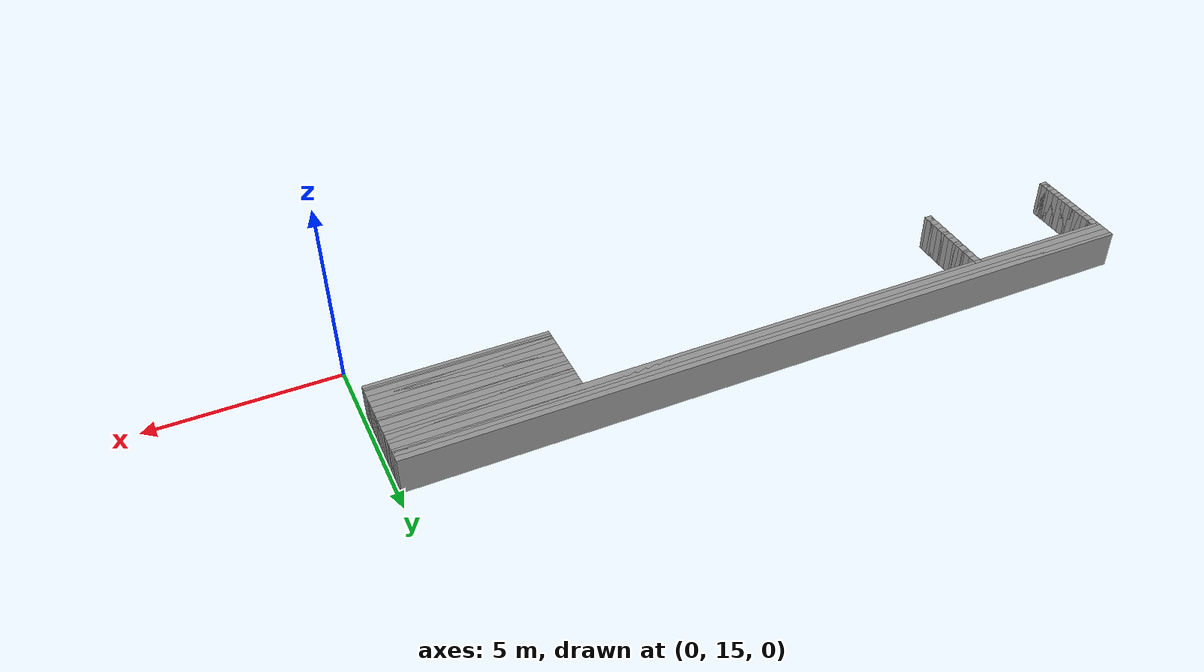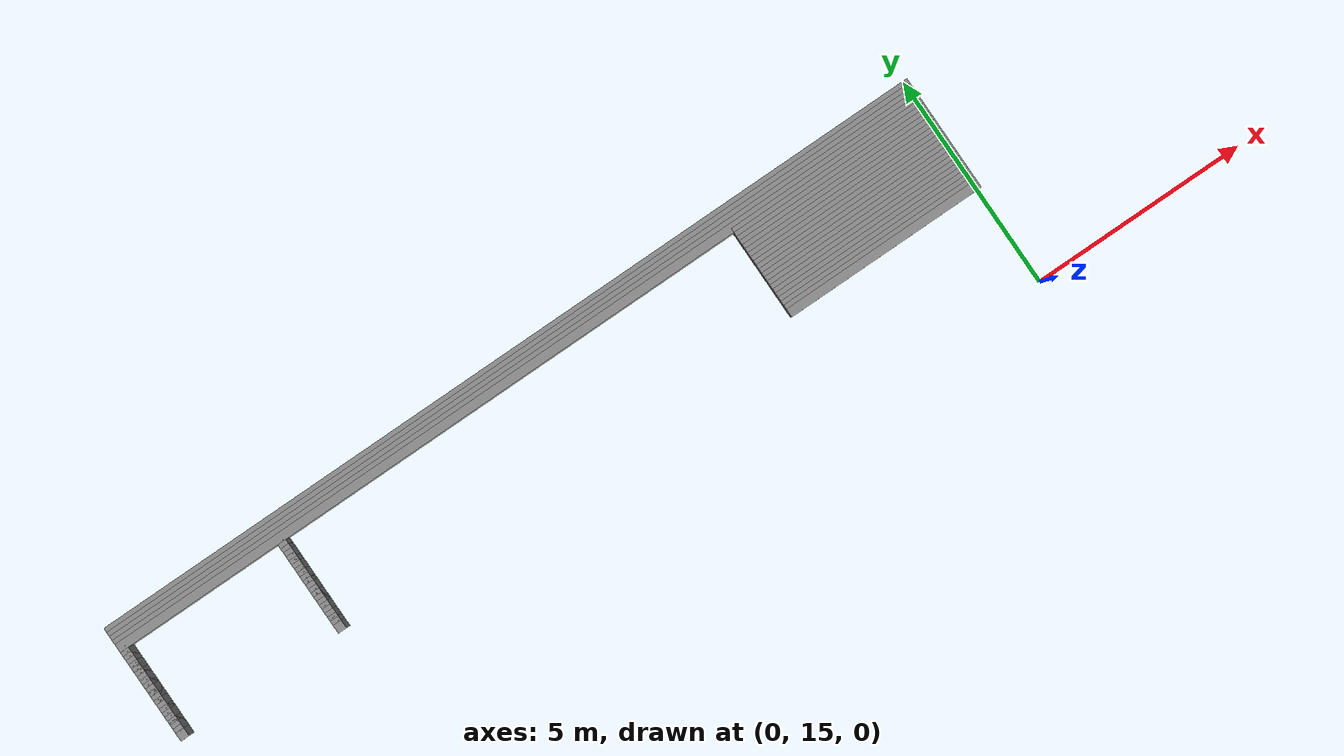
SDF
<sdf version="1.6">
 <world name="GridMap">
  <model name="GridMap">
   <link name="Wall_(159.0,173.0)">
    <collision name="Wall_(159.0,173.0)_Collision">
     <geometry><box><size>0.2 0.2 1.0</size></box></geometry>
     <pose>-15.9 17.3 0.5 0 -0 0</pose>
    </collision>
    <visual name="Wall_(159.0,173.0)_Visual">
     <geometry><box><size>0.2 0.2 1.0</size></box></geometry>
     <pose>-15.9 17.3 0.5 0 -0 0</pose>
     <material>
      <script><uri>file://media/materials/scripts/gazebo.material</uri><name>Gazebo/Grey</name></script>
      <ambient>1 1 1 1</ambient>
     </material>
     <meta><layer>0</layer></meta>
    </visual>
    <pose>0 0 0.5 0 -0 0</pose>
   </link>
   <link name="Wall_(198.0,173.0)">
    <collision name="Wall_(198.0,173.0)_Collision">
     <geometry><box><size>0.2 0.2 1.0</size></box></geometry>
     <pose>-19.8 17.3 0.5 0 -0 0</pose>
    </collision>
    <visual name="Wall_(198.0,173.0)_Visual">
     <geometry><box><size>0.2 0.2 1.0</size></box></geometry>
     <pose>-19.8 17.3 0.5 0 -0 0</pose>
     <material>
      <script><uri>file://media/materials/scripts/gazebo.material</uri><name>Gazebo/Grey</name></script>
      <ambient>1 1 1 1</ambient>
     </material>
     <meta><layer>0</layer></meta>
    </visual>
    <pose>0 0 0.5 0 -0 0</pose>
   </link>
   <link name="Wall_(23.5,174.0)">
    <collision name="Wall_(23.5,174.0)_Collision">
     <geometry><box><size>4.7 0.2 1.0</size></box></geometry>
     <pose>-2.35 17.4 0.5 0 -0 0</pose>
    </collision>
    <visual name="Wall_(23.5,174.0)_Visual">
     <geometry><box><size>4.7 0.2 1.0</size></box></geometry>
     <pose>-2.35 17.4 0.5 0 -0 0</pose>
     <material>
      <script><uri>file://media/materials/scripts/gazebo.material</uri><name>Gazebo/Grey</name></script>
      <ambient>1 1 1 1</ambient>
     </material>
     <meta><layer>0</layer></meta>
    </visual>
    <pose>0 0 0.5 0 -0 0</pose>
   </link>
   <link name="Wall_(159.0,174.0)">
    <collision name="Wall_(159.0,174.0)_Collision">
     <geometry><box><size>0.2 0.2 1.0</size></box></geometry>
     <pose>-15.9 17.4 0.5 0 -0 0</pose>
    </collision>
    <visual name="Wall_(159.0,174.0)_Visual">
     <geometry><box><size>0.2 0.2 1.0</size></box></geometry>
     <pose>-15.9 17.4 0.5 0 -0 0</pose>
     <material>
      <script><uri>file://media/materials/scripts/gazebo.material</uri><name>Gazebo/Grey</name></script>
      <ambient>1 1 1 1</ambient>
     </material>
     <meta><layer>0</layer></meta>
    </visual>
    <pose>0 0 0.5 0 -0 0</pose>
   </link>
   <link name="Wall_(198.0,174.0)">
    <collision name="Wall_(198.0,174.0)_Collision">
     <geometry><box><size>0.2 0.2 1.0</size></box></geometry>
     <pose>-19.8 17.4 0.5 0 -0 0</pose>
    </collision>
    <visual name="Wall_(198.0,174.0)_Visual">
     <geometry><box><size>0.2 0.2 1.0</size></box></geometry>
     <pose>-19.8 17.4 0.5 0 -0 0</pose>
     <material>
      <script><uri>file://media/materials/scripts/gazebo.material</uri><name>Gazebo/Grey</name></script>
      <ambient>1 1 1 1</ambient>
     </material>
     <meta><layer>0</layer></meta>
    </visual>
    <pose>0 0 0.5 0 -0 0</pose>
   </link>
   <link name="Wall_(23.5,175.0)">
    <collision name="Wall_(23.5,175.0)_Collision">
     <geometry><box><size>4.7 0.2 1.0</size></box></geometry>
     <pose>-2.35 17.5 0.5 0 -0 0</pose>
    </collision>
    <visual name="Wall_(23.5,175.0)_Visual">
     <geometry><box><size>4.7 0.2 1.0</size></box></geometry>
     <pose>-2.35 17.5 0.5 0 -0 0</pose>
     <material>
      <script><uri>file://media/materials/scripts/gazebo.material</uri><name>Gazebo/Grey</name></script>
      <ambient>1 1 1 1</ambient>
     </material>
     <meta><layer>0</layer></meta>
    </visual>
    <pose>0 0 0.5 0 -0 0</pose>
   </link>
   <link name="Wall_(159.0,175.0)">
    <collision name="Wall_(159.0,175.0)_Collision">
     <geometry><box><size>0.2 0.2 1.0</size></box></geometry>
     <pose>-15.9 17.5 0.5 0 -0 0</pose>
    </collision>
    <visual name="Wall_(159.0,175.0)_Visual">
     <geometry><box><size>0.2 0.2 1.0</size></box></geometry>
     <pose>-15.9 17.5 0.5 0 -0 0</pose>
     <material>
      <script><uri>file://media/materials/scripts/gazebo.material</uri><name>Gazebo/Grey</name></script>
      <ambient>1 1 1 1</ambient>
     </material>
     <meta><layer>0</layer></meta>
    </visual>
    <pose>0 0 0.5 0 -0 0</pose>
   </link>
   <link name="Wall_(198.0,175.0)">
    <collision name="Wall_(198.0,175.0)_Collision">
     <geometry><box><size>0.2 0.2 1.0</size></box></geometry>
     <pose>-19.8 17.5 0.5 0 -0 0</pose>
    </collision>
    <visual name="Wall_(198.0,175.0)_Visual">
     <geometry><box><size>0.2 0.2 1.0</size></box></geometry>
     <pose>-19.8 17.5 0.5 0 -0 0</pose>
     <material>
      <script><uri>file://media/materials/scripts/gazebo.material</uri><name>Gazebo/Grey</name></script>
      <ambient>1 1 1 1</ambient>
     </material>
     <meta><layer>0</layer></meta>
    </visual>
    <pose>0 0 0.5 0 -0 0</pose>
   </link>
   <link name="Wall_(23.5,176.0)">
    <collision name="Wall_(23.5,176.0)_Collision">
     <geometry><box><size>4.7 0.2 1.0</size></box></geometry>
     <pose>-2.35 17.6 0.5 0 -0 0</pose>
    </collision>
    <visual name="Wall_(23.5,176.0)_Visual">
     <geometry><box><size>4.7 0.2 1.0</size></box></geometry>
     <pose>-2.35 17.6 0.5 0 -0 0</pose>
     <material>
      <script><uri>file://media/materials/scripts/gazebo.material</uri><name>Gazebo/Grey</name></script>
      <ambient>1 1 1 1</ambient>
     </material>
     <meta><layer>0</layer></meta>
    </visual>
    <pose>0 0 0.5 0 -0 0</pose>
   </link>
   <link name="Wall_(159.0,176.0)">
    <collision name="Wall_(159.0,176.0)_Collision">
     <geometry><box><size>0.2 0.2 1.0</size></box></geometry>
     <pose>-15.9 17.6 0.5 0 -0 0</pose>
    </collision>
    <visual name="Wall_(159.0,176.0)_Visual">
     <geometry><box><size>0.2 0.2 1.0</size></box></geometry>
     <pose>-15.9 17.6 0.5 0 -0 0</pose>
     <material>
      <script><uri>file://media/materials/scripts/gazebo.material</uri><name>Gazebo/Grey</name></script>
      <ambient>1 1 1 1</ambient>
     </material>
     <meta><layer>0</layer></meta>
    </visual>
    <pose>0 0 0.5 0 -0 0</pose>
   </link>
   <link name="Wall_(198.0,176.0)">
    <collision name="Wall_(198.0,176.0)_Collision">
     <geometry><box><size>0.2 0.2 1.0</size></box></geometry>
     <pose>-19.8 17.6 0.5 0 -0 0</pose>
    </collision>
    <visual name="Wall_(198.0,176.0)_Visual">
     <geometry><box><size>0.2 0.2 1.0</size></box></geometry>
     <pose>-19.8 17.6 0.5 0 -0 0</pose>
     <material>
      <script><uri>file://media/materials/scripts/gazebo.material</uri><name>Gazebo/Grey</name></script>
      <ambient>1 1 1 1</ambient>
     </material>
     <meta><layer>0</layer></meta>
    </visual>
    <pose>0 0 0.5 0 -0 0</pose>
   </link>
   <link name="Wall_(23.5,177.0)">
    <collision name="Wall_(23.5,177.0)_Collision">
     <geometry><box><size>4.7 0.2 1.0</size></box></geometry>
     <pose>-2.35 17.7 0.5 0 -0 0</pose>
    </collision>
    <visual name="Wall_(23.5,177.0)_Visual">
     <geometry><box><size>4.7 0.2 1.0</size></box></geometry>
     <pose>-2.35 17.7 0.5 0 -0 0</pose>
     <material>
      <script><uri>file://media/materials/scripts/gazebo.material</uri><name>Gazebo/Grey</name></script>
      <ambient>1 1 1 1</ambient>
     </material>
     <meta><layer>0</layer></meta>
    </visual>
    <pose>0 0 0.5 0 -0 0</pose>
   </link>
   <link name="Wall_(159.0,177.0)">
    <collision name="Wall_(159.0,177.0)_Collision">
     <geometry><box><size>0.2 0.2 1.0</size></box></geometry>
     <pose>-15.9 17.7 0.5 0 -0 0</pose>
    </collision>
    <visual name="Wall_(159.0,177.0)_Visual">
     <geometry><box><size>0.2 0.2 1.0</size></box></geometry>
     <pose>-15.9 17.7 0.5 0 -0 0</pose>
     <material>
      <script><uri>file://media/materials/scripts/gazebo.material</uri><name>Gazebo/Grey</name></script>
      <ambient>1 1 1 1</ambient>
     </material>
     <meta><layer>0</layer></meta>
    </visual>
    <pose>0 0 0.5 0 -0 0</pose>
   </link>
   <link name="Wall_(198.0,177.0)">
    <collision name="Wall_(198.0,177.0)_Collision">
     <geometry><box><size>0.2 0.2 1.0</size></box></geometry>
     <pose>-19.8 17.7 0.5 0 -0 0</pose>
    </collision>
    <visual name="Wall_(198.0,177.0)_Visual">
     <geometry><box><size>0.2 0.2 1.0</size></box></geometry>
     <pose>-19.8 17.7 0.5 0 -0 0</pose>
     <material>
      <script><uri>file://media/materials/scripts/gazebo.material</uri><name>Gazebo/Grey</name></script>
      <ambient>1 1 1 1</ambient>
     </material>
     <meta><layer>0</layer></meta>
    </visual>
    <pose>0 0 0.5 0 -0 0</pose>
   </link>
   <link name="Wall_(23.5,178.0)">
    <collision name="Wall_(23.5,178.0)_Collision">
     <geometry><box><size>4.7 0.2 1.0</size></box></geometry>
     <pose>-2.35 17.8 0.5 0 -0 0</pose>
    </collision>
    <visual name="Wall_(23.5,178.0)_Visual">
     <geometry><box><size>4.7 0.2 1.0</size></box></geometry>
     <pose>-2.35 17.8 0.5 0 -0 0</pose>
     <material>
      <script><uri>file://media/materials/scripts/gazebo.material</uri><name>Gazebo/Grey</name></script>
      <ambient>1 1 1 1</ambient>
     </material>
     <meta><layer>0</layer></meta>
    </visual>
    <pose>0 0 0.5 0 -0 0</pose>
   </link>
   <link name="Wall_(159.0,178.0)">
    <collision name="Wall_(159.0,178.0)_Collision">
     <geometry><box><size>0.2 0.2 1.0</size></box></geometry>
     <pose>-15.9 17.8 0.5 0 -0 0</pose>
    </collision>
    <visual name="Wall_(159.0,178.0)_Visual">
     <geometry><box><size>0.2 0.2 1.0</size></box></geometry>
     <pose>-15.9 17.8 0.5 0 -0 0</pose>
     <material>
      <script><uri>file://media/materials/scripts/gazebo.material</uri><name>Gazebo/Grey</name></script>
      <ambient>1 1 1 1</ambient>
     </material>
     <meta><layer>0</layer></meta>
    </visual>
    <pose>0 0 0.5 0 -0 0</pose>
   </link>
   <link name="Wall_(198.0,178.0)">
    <collision name="Wall_(198.0,178.0)_Collision">
     <geometry><box><size>0.2 0.2 1.0</size></box></geometry>
     <pose>-19.8 17.8 0.5 0 -0 0</pose>
    </collision>
    <visual name="Wall_(198.0,178.0)_Visual">
     <geometry><box><size>0.2 0.2 1.0</size></box></geometry>
     <pose>-19.8 17.8 0.5 0 -0 0</pose>
     <material>
      <script><uri>file://media/materials/scripts/gazebo.material</uri><name>Gazebo/Grey</name></script>
      <ambient>1 1 1 1</ambient>
     </material>
     <meta><layer>0</layer></meta>
    </visual>
    <pose>0 0 0.5 0 -0 0</pose>
   </link>
   <link name="Wall_(23.5,179.0)">
    <collision name="Wall_(23.5,179.0)_Collision">
     <geometry><box><size>4.7 0.2 1.0</size></box></geometry>
     <pose>-2.35 17.9 0.5 0 -0 0</pose>
    </collision>
    <visual name="Wall_(23.5,179.0)_Visual">
     <geometry><box><size>4.7 0.2 1.0</size></box></geometry>
     <pose>-2.35 17.9 0.5 0 -0 0</pose>
     <material>
      <script><uri>file://media/materials/scripts/gazebo.material</uri><name>Gazebo/Grey</name></script>
      <ambient>1 1 1 1</ambient>
     </material>
     <meta><layer>0</layer></meta>
    </visual>
    <pose>0 0 0.5 0 -0 0</pose>
   </link>
   <link name="Wall_(159.0,179.0)">
    <collision name="Wall_(159.0,179.0)_Collision">
     <geometry><box><size>0.2 0.2 1.0</size></box></geometry>
     <pose>-15.9 17.9 0.5 0 -0 0</pose>
    </collision>
    <visual name="Wall_(159.0,179.0)_Visual">
     <geometry><box><size>0.2 0.2 1.0</size></box></geometry>
     <pose>-15.9 17.9 0.5 0 -0 0</pose>
     <material>
      <script><uri>file://media/materials/scripts/gazebo.material</uri><name>Gazebo/Grey</name></script>
      <ambient>1 1 1 1</ambient>
     </material>
     <meta><layer>0</layer></meta>
    </visual>
    <pose>0 0 0.5 0 -0 0</pose>
   </link>
   <link name="Wall_(198.0,179.0)">
    <collision name="Wall_(198.0,179.0)_Collision">
     <geometry><box><size>0.2 0.2 1.0</size></box></geometry>
     <pose>-19.8 17.9 0.5 0 -0 0</pose>
    </collision>
    <visual name="Wall_(198.0,179.0)_Visual">
     <geometry><box><size>0.2 0.2 1.0</size></box></geometry>
     <pose>-19.8 17.9 0.5 0 -0 0</pose>
     <material>
      <script><uri>file://media/materials/scripts/gazebo.material</uri><name>Gazebo/Grey</name></script>
      <ambient>1 1 1 1</ambient>
     </material>
     <meta><layer>0</layer></meta>
    </visual>
    <pose>0 0 0.5 0 -0 0</pose>
   </link>
   <link name="Wall_(23.5,180.0)">
    <collision name="Wall_(23.5,180.0)_Collision">
     <geometry><box><size>4.7 0.2 1.0</size></box></geometry>
     <pose>-2.35 18.0 0.5 0 -0 0</pose>
    </collision>
    <visual name="Wall_(23.5,180.0)_Visual">
     <geometry><box><size>4.7 0.2 1.0</size></box></geometry>
     <pose>-2.35 18.0 0.5 0 -0 0</pose>
     <material>
      <script><uri>file://media/materials/scripts/gazebo.material</uri><name>Gazebo/Grey</name></script>
      <ambient>1 1 1 1</ambient>
     </material>
     <meta><layer>0</layer></meta>
    </visual>
    <pose>0 0 0.5 0 -0 0</pose>
   </link>
   <link name="Wall_(159.0,180.0)">
    <collision name="Wall_(159.0,180.0)_Collision">
     <geometry><box><size>0.2 0.2 1.0</size></box></geometry>
     <pose>-15.9 18.0 0.5 0 -0 0</pose>
    </collision>
    <visual name="Wall_(159.0,180.0)_Visual">
     <geometry><box><size>0.2 0.2 1.0</size></box></geometry>
     <pose>-15.9 18.0 0.5 0 -0 0</pose>
     <material>
      <script><uri>file://media/materials/scripts/gazebo.material</uri><name>Gazebo/Grey</name></script>
      <ambient>1 1 1 1</ambient>
     </material>
     <meta><layer>0</layer></meta>
    </visual>
    <pose>0 0 0.5 0 -0 0</pose>
   </link>
   <link name="Wall_(198.0,180.0)">
    <collision name="Wall_(198.0,180.0)_Collision">
     <geometry><box><size>0.2 0.2 1.0</size></box></geometry>
     <pose>-19.8 18.0 0.5 0 -0 0</pose>
    </collision>
    <visual name="Wall_(198.0,180.0)_Visual">
     <geometry><box><size>0.2 0.2 1.0</size></box></geometry>
     <pose>-19.8 18.0 0.5 0 -0 0</pose>
     <material>
      <script><uri>file://media/materials/scripts/gazebo.material</uri><name>Gazebo/Grey</name></script>
      <ambient>1 1 1 1</ambient>
     </material>
     <meta><layer>0</layer></meta>
    </visual>
    <pose>0 0 0.5 0 -0 0</pose>
   </link>
   <link name="Wall_(23.5,181.0)">
    <collision name="Wall_(23.5,181.0)_Collision">
     <geometry><box><size>4.7 0.2 1.0</size></box></geometry>
     <pose>-2.35 18.1 0.5 0 -0 0</pose>
    </collision>
    <visual name="Wall_(23.5,181.0)_Visual">
     <geometry><box><size>4.7 0.2 1.0</size></box></geometry>
     <pose>-2.35 18.1 0.5 0 -0 0</pose>
     <material>
      <script><uri>file://media/materials/scripts/gazebo.material</uri><name>Gazebo/Grey</name></script>
      <ambient>1 1 1 1</ambient>
     </material>
     <meta><layer>0</layer></meta>
    </visual>
    <pose>0 0 0.5 0 -0 0</pose>
   </link>
   <link name="Wall_(159.0,181.0)">
    <collision name="Wall_(159.0,181.0)_Collision">
     <geometry><box><size>0.2 0.2 1.0</size></box></geometry>
     <pose>-15.9 18.1 0.5 0 -0 0</pose>
    </collision>
    <visual name="Wall_(159.0,181.0)_Visual">
     <geometry><box><size>0.2 0.2 1.0</size></box></geometry>
     <pose>-15.9 18.1 0.5 0 -0 0</pose>
     <material>
      <script><uri>file://media/materials/scripts/gazebo.material</uri><name>Gazebo/Grey</name></script>
      <ambient>1 1 1 1</ambient>
     </material>
     <meta><layer>0</layer></meta>
    </visual>
    <pose>0 0 0.5 0 -0 0</pose>
   </link>
   <link name="Wall_(198.0,181.0)">
    <collision name="Wall_(198.0,181.0)_Collision">
     <geometry><box><size>0.2 0.2 1.0</size></box></geometry>
     <pose>-19.8 18.1 0.5 0 -0 0</pose>
    </collision>
    <visual name="Wall_(198.0,181.0)_Visual">
     <geometry><box><size>0.2 0.2 1.0</size></box></geometry>
     <pose>-19.8 18.1 0.5 0 -0 0</pose>
     <material>
      <script><uri>file://media/materials/scripts/gazebo.material</uri><name>Gazebo/Grey</name></script>
      <ambient>1 1 1 1</ambient>
     </material>
     <meta><layer>0</layer></meta>
    </visual>
    <pose>0 0 0.5 0 -0 0</pose>
   </link>
   <link name="Wall_(23.5,182.0)">
    <collision name="Wall_(23.5,182.0)_Collision">
     <geometry><box><size>4.7 0.2 1.0</size></box></geometry>
     <pose>-2.35 18.2 0.5 0 -0 0</pose>
    </collision>
    <visual name="Wall_(23.5,182.0)_Visual">
     <geometry><box><size>4.7 0.2 1.0</size></box></geometry>
     <pose>-2.35 18.2 0.5 0 -0 0</pose>
     <material>
      <script><uri>file://media/materials/scripts/gazebo.material</uri><name>Gazebo/Grey</name></script>
      <ambient>1 1 1 1</ambient>
     </material>
     <meta><layer>0</layer></meta>
    </visual>
    <pose>0 0 0.5 0 -0 0</pose>
   </link>
   <link name="Wall_(159.0,182.0)">
    <collision name="Wall_(159.0,182.0)_Collision">
     <geometry><box><size>0.2 0.2 1.0</size></box></geometry>
     <pose>-15.9 18.2 0.5 0 -0 0</pose>
    </collision>
    <visual name="Wall_(159.0,182.0)_Visual">
     <geometry><box><size>0.2 0.2 1.0</size></box></geometry>
     <pose>-15.9 18.2 0.5 0 -0 0</pose>
     <material>
      <script><uri>file://media/materials/scripts/gazebo.material</uri><name>Gazebo/Grey</name></script>
      <ambient>1 1 1 1</ambient>
     </material>
     <meta><layer>0</layer></meta>
    </visual>
    <pose>0 0 0.5 0 -0 0</pose>
   </link>
   <link name="Wall_(198.0,182.0)">
    <collision name="Wall_(198.0,182.0)_Collision">
     <geometry><box><size>0.2 0.2 1.0</size></box></geometry>
     <pose>-19.8 18.2 0.5 0 -0 0</pose>
    </collision>
    <visual name="Wall_(198.0,182.0)_Visual">
     <geometry><box><size>0.2 0.2 1.0</size></box></geometry>
     <pose>-19.8 18.2 0.5 0 -0 0</pose>
     <material>
      <script><uri>file://media/materials/scripts/gazebo.material</uri><name>Gazebo/Grey</name></script>
      <ambient>1 1 1 1</ambient>
     </material>
     <meta><layer>0</layer></meta>
    </visual>
    <pose>0 0 0.5 0 -0 0</pose>
   </link>
   <link name="Wall_(23.5,183.0)">
    <collision name="Wall_(23.5,183.0)_Collision">
     <geometry><box><size>4.7 0.2 1.0</size></box></geometry>
     <pose>-2.35 18.3 0.5 0 -0 0</pose>
    </collision>
    <visual name="Wall_(23.5,183.0)_Visual">
     <geometry><box><size>4.7 0.2 1.0</size></box></geometry>
     <pose>-2.35 18.3 0.5 0 -0 0</pose>
     <material>
      <script><uri>file://media/materials/scripts/gazebo.material</uri><name>Gazebo/Grey</name></script>
      <ambient>1 1 1 1</ambient>
     </material>
     <meta><layer>0</layer></meta>
    </visual>
    <pose>0 0 0.5 0 -0 0</pose>
   </link>
   <link name="Wall_(159.0,183.0)">
    <collision name="Wall_(159.0,183.0)_Collision">
     <geometry><box><size>0.2 0.2 1.0</size></box></geometry>
     <pose>-15.9 18.3 0.5 0 -0 0</pose>
    </collision>
    <visual name="Wall_(159.0,183.0)_Visual">
     <geometry><box><size>0.2 0.2 1.0</size></box></geometry>
     <pose>-15.9 18.3 0.5 0 -0 0</pose>
     <material>
      <script><uri>file://media/materials/scripts/gazebo.material</uri><name>Gazebo/Grey</name></script>
      <ambient>1 1 1 1</ambient>
     </material>
     <meta><layer>0</layer></meta>
    </visual>
    <pose>0 0 0.5 0 -0 0</pose>
   </link>
   <link name="Wall_(198.0,183.0)">
    <collision name="Wall_(198.0,183.0)_Collision">
     <geometry><box><size>0.2 0.2 1.0</size></box></geometry>
     <pose>-19.8 18.3 0.5 0 -0 0</pose>
    </collision>
    <visual name="Wall_(198.0,183.0)_Visual">
     <geometry><box><size>0.2 0.2 1.0</size></box></geometry>
     <pose>-19.8 18.3 0.5 0 -0 0</pose>
     <material>
      <script><uri>file://media/materials/scripts/gazebo.material</uri><name>Gazebo/Grey</name></script>
      <ambient>1 1 1 1</ambient>
     </material>
     <meta><layer>0</layer></meta>
    </visual>
    <pose>0 0 0.5 0 -0 0</pose>
   </link>
   <link name="Wall_(23.5,184.0)">
    <collision name="Wall_(23.5,184.0)_Collision">
     <geometry><box><size>4.7 0.2 1.0</size></box></geometry>
     <pose>-2.35 18.4 0.5 0 -0 0</pose>
    </collision>
    <visual name="Wall_(23.5,184.0)_Visual">
     <geometry><box><size>4.7 0.2 1.0</size></box></geometry>
     <pose>-2.35 18.4 0.5 0 -0 0</pose>
     <material>
      <script><uri>file://media/materials/scripts/gazebo.material</uri><name>Gazebo/Grey</name></script>
      <ambient>1 1 1 1</ambient>
     </material>
     <meta><layer>0</layer></meta>
    </visual>
    <pose>0 0 0.5 0 -0 0</pose>
   </link>
   <link name="Wall_(159.0,184.0)">
    <collision name="Wall_(159.0,184.0)_Collision">
     <geometry><box><size>0.2 0.2 1.0</size></box></geometry>
     <pose>-15.9 18.4 0.5 0 -0 0</pose>
    </collision>
    <visual name="Wall_(159.0,184.0)_Visual">
     <geometry><box><size>0.2 0.2 1.0</size></box></geometry>
     <pose>-15.9 18.4 0.5 0 -0 0</pose>
     <material>
      <script><uri>file://media/materials/scripts/gazebo.material</uri><name>Gazebo/Grey</name></script>
      <ambient>1 1 1 1</ambient>
     </material>
     <meta><layer>0</layer></meta>
    </visual>
    <pose>0 0 0.5 0 -0 0</pose>
   </link>
   <link name="Wall_(198.0,184.0)">
    <collision name="Wall_(198.0,184.0)_Collision">
     <geometry><box><size>0.2 0.2 1.0</size></box></geometry>
     <pose>-19.8 18.4 0.5 0 -0 0</pose>
    </collision>
    <visual name="Wall_(198.0,184.0)_Visual">
     <geometry><box><size>0.2 0.2 1.0</size></box></geometry>
     <pose>-19.8 18.4 0.5 0 -0 0</pose>
     <material>
      <script><uri>file://media/materials/scripts/gazebo.material</uri><name>Gazebo/Grey</name></script>
      <ambient>1 1 1 1</ambient>
     </material>
     <meta><layer>0</layer></meta>
    </visual>
    <pose>0 0 0.5 0 -0 0</pose>
   </link>
   <link name="Wall_(23.5,185.0)">
    <collision name="Wall_(23.5,185.0)_Collision">
     <geometry><box><size>4.7 0.2 1.0</size></box></geometry>
     <pose>-2.35 18.5 0.5 0 -0 0</pose>
    </collision>
    <visual name="Wall_(23.5,185.0)_Visual">
     <geometry><box><size>4.7 0.2 1.0</size></box></geometry>
     <pose>-2.35 18.5 0.5 0 -0 0</pose>
     <material>
      <script><uri>file://media/materials/scripts/gazebo.material</uri><name>Gazebo/Grey</name></script>
      <ambient>1 1 1 1</ambient>
     </material>
     <meta><layer>0</layer></meta>
    </visual>
    <pose>0 0 0.5 0 -0 0</pose>
   </link>
   <link name="Wall_(159.0,185.0)">
    <collision name="Wall_(159.0,185.0)_Collision">
     <geometry><box><size>0.2 0.2 1.0</size></box></geometry>
     <pose>-15.9 18.5 0.5 0 -0 0</pose>
    </collision>
    <visual name="Wall_(159.0,185.0)_Visual">
     <geometry><box><size>0.2 0.2 1.0</size></box></geometry>
     <pose>-15.9 18.5 0.5 0 -0 0</pose>
     <material>
      <script><uri>file://media/materials/scripts/gazebo.material</uri><name>Gazebo/Grey</name></script>
      <ambient>1 1 1 1</ambient>
     </material>
     <meta><layer>0</layer></meta>
    </visual>
    <pose>0 0 0.5 0 -0 0</pose>
   </link>
   <link name="Wall_(198.0,185.0)">
    <collision name="Wall_(198.0,185.0)_Collision">
     <geometry><box><size>0.2 0.2 1.0</size></box></geometry>
     <pose>-19.8 18.5 0.5 0 -0 0</pose>
    </collision>
    <visual name="Wall_(198.0,185.0)_Visual">
     <geometry><box><size>0.2 0.2 1.0</size></box></geometry>
     <pose>-19.8 18.5 0.5 0 -0 0</pose>
     <material>
      <script><uri>file://media/materials/scripts/gazebo.material</uri><name>Gazebo/Grey</name></script>
      <ambient>1 1 1 1</ambient>
     </material>
     <meta><layer>0</layer></meta>
    </visual>
    <pose>0 0 0.5 0 -0 0</pose>
   </link>
   <link name="Wall_(23.5,186.0)">
    <collision name="Wall_(23.5,186.0)_Collision">
     <geometry><box><size>4.7 0.2 1.0</size></box></geometry>
     <pose>-2.35 18.6 0.5 0 -0 0</pose>
    </collision>
    <visual name="Wall_(23.5,186.0)_Visual">
     <geometry><box><size>4.7 0.2 1.0</size></box></geometry>
     <pose>-2.35 18.6 0.5 0 -0 0</pose>
     <material>
      <script><uri>file://media/materials/scripts/gazebo.material</uri><name>Gazebo/Grey</name></script>
      <ambient>1 1 1 1</ambient>
     </material>
     <meta><layer>0</layer></meta>
    </visual>
    <pose>0 0 0.5 0 -0 0</pose>
   </link>
   <link name="Wall_(159.0,186.0)">
    <collision name="Wall_(159.0,186.0)_Collision">
     <geometry><box><size>0.2 0.2 1.0</size></box></geometry>
     <pose>-15.9 18.6 0.5 0 -0 0</pose>
    </collision>
    <visual name="Wall_(159.0,186.0)_Visual">
     <geometry><box><size>0.2 0.2 1.0</size></box></geometry>
     <pose>-15.9 18.6 0.5 0 -0 0</pose>
     <material>
      <script><uri>file://media/materials/scripts/gazebo.material</uri><name>Gazebo/Grey</name></script>
      <ambient>1 1 1 1</ambient>
     </material>
     <meta><layer>0</layer></meta>
    </visual>
    <pose>0 0 0.5 0 -0 0</pose>
   </link>
   <link name="Wall_(198.0,186.0)">
    <collision name="Wall_(198.0,186.0)_Collision">
     <geometry><box><size>0.2 0.2 1.0</size></box></geometry>
     <pose>-19.8 18.6 0.5 0 -0 0</pose>
    </collision>
    <visual name="Wall_(198.0,186.0)_Visual">
     <geometry><box><size>0.2 0.2 1.0</size></box></geometry>
     <pose>-19.8 18.6 0.5 0 -0 0</pose>
     <material>
      <script><uri>file://media/materials/scripts/gazebo.material</uri><name>Gazebo/Grey</name></script>
      <ambient>1 1 1 1</ambient>
     </material>
     <meta><layer>0</layer></meta>
    </visual>
    <pose>0 0 0.5 0 -0 0</pose>
   </link>
   <link name="Wall_(23.5,187.0)">
    <collision name="Wall_(23.5,187.0)_Collision">
     <geometry><box><size>4.7 0.2 1.0</size></box></geometry>
     <pose>-2.35 18.7 0.5 0 -0 0</pose>
    </collision>
    <visual name="Wall_(23.5,187.0)_Visual">
     <geometry><box><size>4.7 0.2 1.0</size></box></geometry>
     <pose>-2.35 18.7 0.5 0 -0 0</pose>
     <material>
      <script><uri>file://media/materials/scripts/gazebo.material</uri><name>Gazebo/Grey</name></script>
      <ambient>1 1 1 1</ambient>
     </material>
     <meta><layer>0</layer></meta>
    </visual>
    <pose>0 0 0.5 0 -0 0</pose>
   </link>
   <link name="Wall_(159.0,187.0)">
    <collision name="Wall_(159.0,187.0)_Collision">
     <geometry><box><size>0.2 0.2 1.0</size></box></geometry>
     <pose>-15.9 18.7 0.5 0 -0 0</pose>
    </collision>
    <visual name="Wall_(159.0,187.0)_Visual">
     <geometry><box><size>0.2 0.2 1.0</size></box></geometry>
     <pose>-15.9 18.7 0.5 0 -0 0</pose>
     <material>
      <script><uri>file://media/materials/scripts/gazebo.material</uri><name>Gazebo/Grey</name></script>
      <ambient>1 1 1 1</ambient>
     </material>
     <meta><layer>0</layer></meta>
    </visual>
    <pose>0 0 0.5 0 -0 0</pose>
   </link>
   <link name="Wall_(198.0,187.0)">
    <collision name="Wall_(198.0,187.0)_Collision">
     <geometry><box><size>0.2 0.2 1.0</size></box></geometry>
     <pose>-19.8 18.7 0.5 0 -0 0</pose>
    </collision>
    <visual name="Wall_(198.0,187.0)_Visual">
     <geometry><box><size>0.2 0.2 1.0</size></box></geometry>
     <pose>-19.8 18.7 0.5 0 -0 0</pose>
     <material>
      <script><uri>file://media/materials/scripts/gazebo.material</uri><name>Gazebo/Grey</name></script>
      <ambient>1 1 1 1</ambient>
     </material>
     <meta><layer>0</layer></meta>
    </visual>
    <pose>0 0 0.5 0 -0 0</pose>
   </link>
   <link name="Wall_(23.5,188.0)">
    <collision name="Wall_(23.5,188.0)_Collision">
     <geometry><box><size>4.7 0.2 1.0</size></box></geometry>
     <pose>-2.35 18.8 0.5 0 -0 0</pose>
    </collision>
    <visual name="Wall_(23.5,188.0)_Visual">
     <geometry><box><size>4.7 0.2 1.0</size></box></geometry>
     <pose>-2.35 18.8 0.5 0 -0 0</pose>
     <material>
      <script><uri>file://media/materials/scripts/gazebo.material</uri><name>Gazebo/Grey</name></script>
      <ambient>1 1 1 1</ambient>
     </material>
     <meta><layer>0</layer></meta>
    </visual>
    <pose>0 0 0.5 0 -0 0</pose>
   </link>
   <link name="Wall_(159.0,188.0)">
    <collision name="Wall_(159.0,188.0)_Collision">
     <geometry><box><size>0.2 0.2 1.0</size></box></geometry>
     <pose>-15.9 18.8 0.5 0 -0 0</pose>
    </collision>
    <visual name="Wall_(159.0,188.0)_Visual">
     <geometry><box><size>0.2 0.2 1.0</size></box></geometry>
     <pose>-15.9 18.8 0.5 0 -0 0</pose>
     <material>
      <script><uri>file://media/materials/scripts/gazebo.material</uri><name>Gazebo/Grey</name></script>
      <ambient>1 1 1 1</ambient>
     </material>
     <meta><layer>0</layer></meta>
    </visual>
    <pose>0 0 0.5 0 -0 0</pose>
   </link>
   <link name="Wall_(198.0,188.0)">
    <collision name="Wall_(198.0,188.0)_Collision">
     <geometry><box><size>0.2 0.2 1.0</size></box></geometry>
     <pose>-19.8 18.8 0.5 0 -0 0</pose>
    </collision>
    <visual name="Wall_(198.0,188.0)_Visual">
     <geometry><box><size>0.2 0.2 1.0</size></box></geometry>
     <pose>-19.8 18.8 0.5 0 -0 0</pose>
     <material>
      <script><uri>file://media/materials/scripts/gazebo.material</uri><name>Gazebo/Grey</name></script>
      <ambient>1 1 1 1</ambient>
     </material>
     <meta><layer>0</layer></meta>
    </visual>
    <pose>0 0 0.5 0 -0 0</pose>
   </link>
   <link name="Wall_(23.5,189.0)">
    <collision name="Wall_(23.5,189.0)_Collision">
     <geometry><box><size>4.7 0.2 1.0</size></box></geometry>
     <pose>-2.35 18.9 0.5 0 -0 0</pose>
    </collision>
    <visual name="Wall_(23.5,189.0)_Visual">
     <geometry><box><size>4.7 0.2 1.0</size></box></geometry>
     <pose>-2.35 18.9 0.5 0 -0 0</pose>
     <material>
      <script><uri>file://media/materials/scripts/gazebo.material</uri><name>Gazebo/Grey</name></script>
      <ambient>1 1 1 1</ambient>
     </material>
     <meta><layer>0</layer></meta>
    </visual>
    <pose>0 0 0.5 0 -0 0</pose>
   </link>
   <link name="Wall_(159.0,189.0)">
    <collision name="Wall_(159.0,189.0)_Collision">
     <geometry><box><size>0.2 0.2 1.0</size></box></geometry>
     <pose>-15.9 18.9 0.5 0 -0 0</pose>
    </collision>
    <visual name="Wall_(159.0,189.0)_Visual">
     <geometry><box><size>0.2 0.2 1.0</size></box></geometry>
     <pose>-15.9 18.9 0.5 0 -0 0</pose>
     <material>
      <script><uri>file://media/materials/scripts/gazebo.material</uri><name>Gazebo/Grey</name></script>
      <ambient>1 1 1 1</ambient>
     </material>
     <meta><layer>0</layer></meta>
    </visual>
    <pose>0 0 0.5 0 -0 0</pose>
   </link>
   <link name="Wall_(198.0,189.0)">
    <collision name="Wall_(198.0,189.0)_Collision">
     <geometry><box><size>0.2 0.2 1.0</size></box></geometry>
     <pose>-19.8 18.9 0.5 0 -0 0</pose>
    </collision>
    <visual name="Wall_(198.0,189.0)_Visual">
     <geometry><box><size>0.2 0.2 1.0</size></box></geometry>
     <pose>-19.8 18.9 0.5 0 -0 0</pose>
     <material>
      <script><uri>file://media/materials/scripts/gazebo.material</uri><name>Gazebo/Grey</name></script>
      <ambient>1 1 1 1</ambient>
     </material>
     <meta><layer>0</layer></meta>
    </visual>
    <pose>0 0 0.5 0 -0 0</pose>
   </link>
   <link name="Wall_(23.5,190.0)">
    <collision name="Wall_(23.5,190.0)_Collision">
     <geometry><box><size>4.7 0.2 1.0</size></box></geometry>
     <pose>-2.35 19.0 0.5 0 -0 0</pose>
    </collision>
    <visual name="Wall_(23.5,190.0)_Visual">
     <geometry><box><size>4.7 0.2 1.0</size></box></geometry>
     <pose>-2.35 19.0 0.5 0 -0 0</pose>
     <material>
      <script><uri>file://media/materials/scripts/gazebo.material</uri><name>Gazebo/Grey</name></script>
      <ambient>1 1 1 1</ambient>
     </material>
     <meta><layer>0</layer></meta>
    </visual>
    <pose>0 0 0.5 0 -0 0</pose>
   </link>
   <link name="Wall_(159.0,190.0)">
    <collision name="Wall_(159.0,190.0)_Collision">
     <geometry><box><size>0.2 0.2 1.0</size></box></geometry>
     <pose>-15.9 19.0 0.5 0 -0 0</pose>
    </collision>
    <visual name="Wall_(159.0,190.0)_Visual">
     <geometry><box><size>0.2 0.2 1.0</size></box></geometry>
     <pose>-15.9 19.0 0.5 0 -0 0</pose>
     <material>
      <script><uri>file://media/materials/scripts/gazebo.material</uri><name>Gazebo/Grey</name></script>
      <ambient>1 1 1 1</ambient>
     </material>
     <meta><layer>0</layer></meta>
    </visual>
    <pose>0 0 0.5 0 -0 0</pose>
   </link>
   <link name="Wall_(198.0,190.0)">
    <collision name="Wall_(198.0,190.0)_Collision">
     <geometry><box><size>0.2 0.2 1.0</size></box></geometry>
     <pose>-19.8 19.0 0.5 0 -0 0</pose>
    </collision>
    <visual name="Wall_(198.0,190.0)_Visual">
     <geometry><box><size>0.2 0.2 1.0</size></box></geometry>
     <pose>-19.8 19.0 0.5 0 -0 0</pose>
     <material>
      <script><uri>file://media/materials/scripts/gazebo.material</uri><name>Gazebo/Grey</name></script>
      <ambient>1 1 1 1</ambient>
     </material>
     <meta><layer>0</layer></meta>
    </visual>
    <pose>0 0 0.5 0 -0 0</pose>
   </link>
   <link name="Wall_(23.5,191.0)">
    <collision name="Wall_(23.5,191.0)_Collision">
     <geometry><box><size>4.7 0.2 1.0</size></box></geometry>
     <pose>-2.35 19.1 0.5 0 -0 0</pose>
    </collision>
    <visual name="Wall_(23.5,191.0)_Visual">
     <geometry><box><size>4.7 0.2 1.0</size></box></geometry>
     <pose>-2.35 19.1 0.5 0 -0 0</pose>
     <material>
      <script><uri>file://media/materials/scripts/gazebo.material</uri><name>Gazebo/Grey</name></script>
      <ambient>1 1 1 1</ambient>
     </material>
     <meta><layer>0</layer></meta>
    </visual>
    <pose>0 0 0.5 0 -0 0</pose>
   </link>
   <link name="Wall_(159.0,191.0)">
    <collision name="Wall_(159.0,191.0)_Collision">
     <geometry><box><size>0.2 0.2 1.0</size></box></geometry>
     <pose>-15.9 19.1 0.5 0 -0 0</pose>
    </collision>
    <visual name="Wall_(159.0,191.0)_Visual">
     <geometry><box><size>0.2 0.2 1.0</size></box></geometry>
     <pose>-15.9 19.1 0.5 0 -0 0</pose>
     <material>
      <script><uri>file://media/materials/scripts/gazebo.material</uri><name>Gazebo/Grey</name></script>
      <ambient>1 1 1 1</ambient>
     </material>
     <meta><layer>0</layer></meta>
    </visual>
    <pose>0 0 0.5 0 -0 0</pose>
   </link>
   <link name="Wall_(198.0,191.0)">
    <collision name="Wall_(198.0,191.0)_Collision">
     <geometry><box><size>0.2 0.2 1.0</size></box></geometry>
     <pose>-19.8 19.1 0.5 0 -0 0</pose>
    </collision>
    <visual name="Wall_(198.0,191.0)_Visual">
     <geometry><box><size>0.2 0.2 1.0</size></box></geometry>
     <pose>-19.8 19.1 0.5 0 -0 0</pose>
     <material>
      <script><uri>file://media/materials/scripts/gazebo.material</uri><name>Gazebo/Grey</name></script>
      <ambient>1 1 1 1</ambient>
     </material>
     <meta><layer>0</layer></meta>
    </visual>
    <pose>0 0 0.5 0 -0 0</pose>
   </link>
   <link name="Wall_(23.5,192.0)">
    <collision name="Wall_(23.5,192.0)_Collision">
     <geometry><box><size>4.7 0.2 1.0</size></box></geometry>
     <pose>-2.35 19.2 0.5 0 -0 0</pose>
    </collision>
    <visual name="Wall_(23.5,192.0)_Visual">
     <geometry><box><size>4.7 0.2 1.0</size></box></geometry>
     <pose>-2.35 19.2 0.5 0 -0 0</pose>
     <material>
      <script><uri>file://media/materials/scripts/gazebo.material</uri><name>Gazebo/Grey</name></script>
      <ambient>1 1 1 1</ambient>
     </material>
     <meta><layer>0</layer></meta>
    </visual>
    <pose>0 0 0.5 0 -0 0</pose>
   </link>
   <link name="Wall_(159.0,192.0)">
    <collision name="Wall_(159.0,192.0)_Collision">
     <geometry><box><size>0.2 0.2 1.0</size></box></geometry>
     <pose>-15.9 19.2 0.5 0 -0 0</pose>
    </collision>
    <visual name="Wall_(159.0,192.0)_Visual">
     <geometry><box><size>0.2 0.2 1.0</size></box></geometry>
     <pose>-15.9 19.2 0.5 0 -0 0</pose>
     <material>
      <script><uri>file://media/materials/scripts/gazebo.material</uri><name>Gazebo/Grey</name></script>
      <ambient>1 1 1 1</ambient>
     </material>
     <meta><layer>0</layer></meta>
    </visual>
    <pose>0 0 0.5 0 -0 0</pose>
   </link>
   <link name="Wall_(198.0,192.0)">
    <collision name="Wall_(198.0,192.0)_Collision">
     <geometry><box><size>0.2 0.2 1.0</size></box></geometry>
     <pose>-19.8 19.2 0.5 0 -0 0</pose>
    </collision>
    <visual name="Wall_(198.0,192.0)_Visual">
     <geometry><box><size>0.2 0.2 1.0</size></box></geometry>
     <pose>-19.8 19.2 0.5 0 -0 0</pose>
     <material>
      <script><uri>file://media/materials/scripts/gazebo.material</uri><name>Gazebo/Grey</name></script>
      <ambient>1 1 1 1</ambient>
     </material>
     <meta><layer>0</layer></meta>
    </visual>
    <pose>0 0 0.5 0 -0 0</pose>
   </link>
   <link name="Wall_(23.5,193.0)">
    <collision name="Wall_(23.5,193.0)_Collision">
     <geometry><box><size>4.7 0.2 1.0</size></box></geometry>
     <pose>-2.35 19.3 0.5 0 -0 0</pose>
    </collision>
    <visual name="Wall_(23.5,193.0)_Visual">
     <geometry><box><size>4.7 0.2 1.0</size></box></geometry>
     <pose>-2.35 19.3 0.5 0 -0 0</pose>
     <material>
      <script><uri>file://media/materials/scripts/gazebo.material</uri><name>Gazebo/Grey</name></script>
      <ambient>1 1 1 1</ambient>
     </material>
     <meta><layer>0</layer></meta>
    </visual>
    <pose>0 0 0.5 0 -0 0</pose>
   </link>
   <link name="Wall_(159.0,193.0)">
    <collision name="Wall_(159.0,193.0)_Collision">
     <geometry><box><size>0.2 0.2 1.0</size></box></geometry>
     <pose>-15.9 19.3 0.5 0 -0 0</pose>
    </collision>
    <visual name="Wall_(159.0,193.0)_Visual">
     <geometry><box><size>0.2 0.2 1.0</size></box></geometry>
     <pose>-15.9 19.3 0.5 0 -0 0</pose>
     <material>
      <script><uri>file://media/materials/scripts/gazebo.material</uri><name>Gazebo/Grey</name></script>
      <ambient>1 1 1 1</ambient>
     </material>
     <meta><layer>0</layer></meta>
    </visual>
    <pose>0 0 0.5 0 -0 0</pose>
   </link>
   <link name="Wall_(198.0,193.0)">
    <collision name="Wall_(198.0,193.0)_Collision">
     <geometry><box><size>0.2 0.2 1.0</size></box></geometry>
     <pose>-19.8 19.3 0.5 0 -0 0</pose>
    </collision>
    <visual name="Wall_(198.0,193.0)_Visual">
     <geometry><box><size>0.2 0.2 1.0</size></box></geometry>
     <pose>-19.8 19.3 0.5 0 -0 0</pose>
     <material>
      <script><uri>file://media/materials/scripts/gazebo.material</uri><name>Gazebo/Grey</name></script>
      <ambient>1 1 1 1</ambient>
     </material>
     <meta><layer>0</layer></meta>
    </visual>
    <pose>0 0 0.5 0 -0 0</pose>
   </link>
   <link name="Wall_(23.5,194.0)">
    <collision name="Wall_(23.5,194.0)_Collision">
     <geometry><box><size>4.7 0.2 1.0</size></box></geometry>
     <pose>-2.35 19.4 0.5 0 -0 0</pose>
    </collision>
    <visual name="Wall_(23.5,194.0)_Visual">
     <geometry><box><size>4.7 0.2 1.0</size></box></geometry>
     <pose>-2.35 19.4 0.5 0 -0 0</pose>
     <material>
      <script><uri>file://media/materials/scripts/gazebo.material</uri><name>Gazebo/Grey</name></script>
      <ambient>1 1 1 1</ambient>
     </material>
     <meta><layer>0</layer></meta>
    </visual>
    <pose>0 0 0.5 0 -0 0</pose>
   </link>
   <link name="Wall_(159.0,194.0)">
    <collision name="Wall_(159.0,194.0)_Collision">
     <geometry><box><size>0.2 0.2 1.0</size></box></geometry>
     <pose>-15.9 19.4 0.5 0 -0 0</pose>
    </collision>
    <visual name="Wall_(159.0,194.0)_Visual">
     <geometry><box><size>0.2 0.2 1.0</size></box></geometry>
     <pose>-15.9 19.4 0.5 0 -0 0</pose>
     <material>
      <script><uri>file://media/materials/scripts/gazebo.material</uri><name>Gazebo/Grey</name></script>
      <ambient>1 1 1 1</ambient>
     </material>
     <meta><layer>0</layer></meta>
    </visual>
    <pose>0 0 0.5 0 -0 0</pose>
   </link>
   <link name="Wall_(198.0,194.0)">
    <collision name="Wall_(198.0,194.0)_Collision">
     <geometry><box><size>0.2 0.2 1.0</size></box></geometry>
     <pose>-19.8 19.4 0.5 0 -0 0</pose>
    </collision>
    <visual name="Wall_(198.0,194.0)_Visual">
     <geometry><box><size>0.2 0.2 1.0</size></box></geometry>
     <pose>-19.8 19.4 0.5 0 -0 0</pose>
     <material>
      <script><uri>file://media/materials/scripts/gazebo.material</uri><name>Gazebo/Grey</name></script>
      <ambient>1 1 1 1</ambient>
     </material>
     <meta><layer>0</layer></meta>
    </visual>
    <pose>0 0 0.5 0 -0 0</pose>
   </link>
   <link name="Wall_(99.5,195.0)">
    <collision name="Wall_(99.5,195.0)_Collision">
     <geometry><box><size>19.9 0.2 1.0</size></box></geometry>
     <pose>-9.95 19.5 0.5 0 -0 0</pose>
    </collision>
    <visual name="Wall_(99.5,195.0)_Visual">
     <geometry><box><size>19.9 0.2 1.0</size></box></geometry>
     <pose>-9.95 19.5 0.5 0 -0 0</pose>
     <material>
      <script><uri>file://media/materials/scripts/gazebo.material</uri><name>Gazebo/Grey</name></script>
      <ambient>1 1 1 1</ambient>
     </material>
     <meta><layer>0</layer></meta>
    </visual>
    <pose>0 0 0.5 0 -0 0</pose>
   </link>
   <link name="Wall_(99.5,196.0)">
    <collision name="Wall_(99.5,196.0)_Collision">
     <geometry><box><size>19.9 0.2 1.0</size></box></geometry>
     <pose>-9.95 19.6 0.5 0 -0 0</pose>
    </collision>
    <visual name="Wall_(99.5,196.0)_Visual">
     <geometry><box><size>19.9 0.2 1.0</size></box></geometry>
     <pose>-9.95 19.6 0.5 0 -0 0</pose>
     <material>
      <script><uri>file://media/materials/scripts/gazebo.material</uri><name>Gazebo/Grey</name></script>
      <ambient>1 1 1 1</ambient>
     </material>
     <meta><layer>0</layer></meta>
    </visual>
    <pose>0 0 0.5 0 -0 0</pose>
   </link>
   <link name="Wall_(99.5,197.0)">
    <collision name="Wall_(99.5,197.0)_Collision">
     <geometry><box><size>19.9 0.2 1.0</size></box></geometry>
     <pose>-9.95 19.7 0.5 0 -0 0</pose>
    </collision>
    <visual name="Wall_(99.5,197.0)_Visual">
     <geometry><box><size>19.9 0.2 1.0</size></box></geometry>
     <pose>-9.95 19.7 0.5 0 -0 0</pose>
     <material>
      <script><uri>file://media/materials/scripts/gazebo.material</uri><name>Gazebo/Grey</name></script>
      <ambient>1 1 1 1</ambient>
     </material>
     <meta><layer>0</layer></meta>
    </visual>
    <pose>0 0 0.5 0 -0 0</pose>
   </link>
   <link name="Wall_(99.5,198.0)">
    <collision name="Wall_(99.5,198.0)_Collision">
     <geometry><box><size>19.9 0.2 1.0</size></box></geometry>
     <pose>-9.95 19.8 0.5 0 -0 0</pose>
    </collision>
    <visual name="Wall_(99.5,198.0)_Visual">
     <geometry><box><size>19.9 0.2 1.0</size></box></geometry>
     <pose>-9.95 19.8 0.5 0 -0 0</pose>
     <material>
      <script><uri>file://media/materials/scripts/gazebo.material</uri><name>Gazebo/Grey</name></script>
      <ambient>1 1 1 1</ambient>
     </material>
     <meta><layer>0</layer></meta>
    </visual>
    <pose>0 0 0.5 0 -0 0</pose>
   </link>
   <link name="Wall_(99.5,199.0)">
    <collision name="Wall_(99.5,199.0)_Collision">
     <geometry><box><size>19.9 0.2 1.0</size></box></geometry>
     <pose>-9.95 19.9 0.5 0 -0 0</pose>
    </collision>
    <visual name="Wall_(99.5,199.0)_Visual">
     <geometry><box><size>19.9 0.2 1.0</size></box></geometry>
     <pose>-9.95 19.9 0.5 0 -0 0</pose>
     <material>
      <script><uri>file://media/materials/scripts/gazebo.material</uri><name>Gazebo/Grey</name></script>
      <ambient>1 1 1 1</ambient>
     </material>
     <meta><layer>0</layer></meta>
    </visual>
    <pose>0 0 0.5 0 -0 0</pose>
   </link>
   <static>1</static>
  </model>
 </world>
</sdf>
